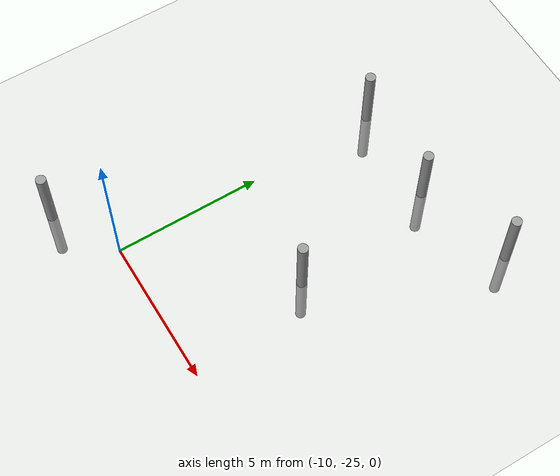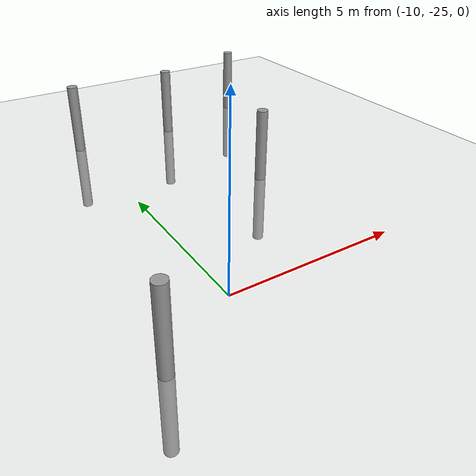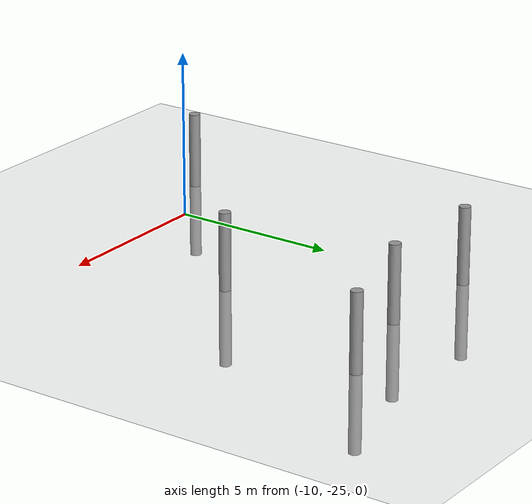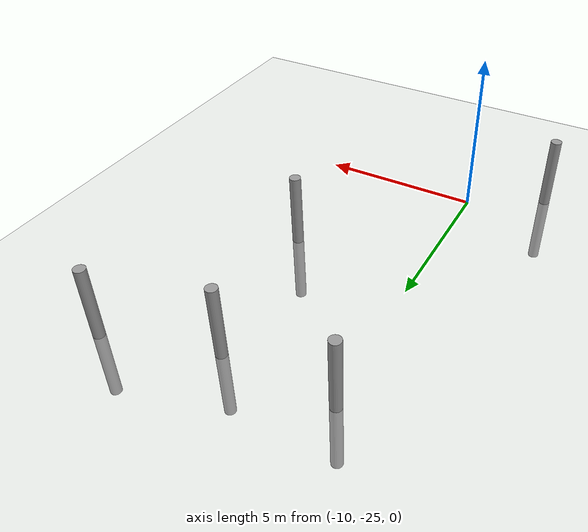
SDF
<sdf version="1.7">
 <world name="default">
  <model name="ground_plane">
   <static>1</static>
   <link name="link">
    <collision name="collision">
     <geometry><plane><normal>0 0 1</normal><size>100 100</size></plane></geometry>
     <surface>
      <contact><collide_bitmask>65535</collide_bitmask></contact>
      <friction><ode><mu>100</mu><mu2>50</mu2></ode></friction>
     </surface>
    </collision>
    <visual name="visual">
     <cast_shadows>0</cast_shadows>
     <geometry><plane><normal>0 0 1</normal><size>100 100</size></plane></geometry>
     <material>
      <script><uri>file://media/materials/scripts/gazebo.material</uri><name>Gazebo/Grey</name></script>
     </material>
    </visual>
   </link>
  </model>
  <model name="filar_0">
   <link name="link">
    <inertial>
     <mass>0.532177</mass>
     <inertia>
      <ixx>0.930096</ixx>
      <ixy>0</ixy>
      <ixz>0</ixz>
      <iyy>0.930096</iyy>
      <iyz>0</iyz>
      <izz>0.00774183</izz>
     </inertia>
    </inertial>
    <visual name="visual">
     <geometry><cylinder><radius>0.170572</radius><length>4.57005</length></cylinder></geometry>
     <material>
      <script><name>Gazebo/Grey</name><uri>file://media/materials/scripts/gazebo.material</uri></script>
      <shader type="pixel"/>
     </material>
    </visual>
    <collision name="collision">
     <geometry><cylinder><radius>0.170572</radius><length>4.57005</length></cylinder></geometry>
     <surface>
      <friction>
       <ode><mu>1</mu><mu2>1</mu2><fdir1>0 0 0</fdir1><slip1>0</slip1><slip2>0</slip2></ode>
       <torsional>
        <coefficient>1</coefficient>
        <patch_radius>0</patch_radius>
        <surface_radius>0</surface_radius>
        <use_patch_radius>1</use_patch_radius>
        <ode><slip>0</slip></ode>
       </torsional>
      </friction>
      <bounce><restitution_coefficient>0</restitution_coefficient><threshold>1e+06</threshold></bounce>
      <contact>
       <collide_without_contact>0</collide_without_contact>
       <collide_without_contact_bitmask>1</collide_without_contact_bitmask>
       <collide_bitmask>1</collide_bitmask>
       <ode>
        <soft_cfm>0</soft_cfm>
        <soft_erp>0.2</soft_erp>
        <kp>1e+13</kp>
        <kd>1</kd>
        <max_vel>0.01</max_vel>
        <min_depth>0</min_depth>
       </ode>
       <bullet>
        <split_impulse>1</split_impulse>
        <split_impulse_penetration_threshold>-0.01</split_impulse_penetration_threshold>
        <soft_cfm>0</soft_cfm>
        <soft_erp>0.2</soft_erp>
        <kp>1e+13</kp>
        <kd>1</kd>
       </bullet>
      </contact>
     </surface>
    </collision>
   </link>
   <static>0</static>
   <pose>-12.243 -26.276 0 0 -0 0</pose>
  </model>
  <model name="filar_2">
   <link name="link">
    <inertial>
     <mass>0.532177</mass>
     <inertia>
      <ixx>0.930096</ixx>
      <ixy>0</ixy>
      <ixz>0</ixz>
      <iyy>0.930096</iyy>
      <iyz>0</iyz>
      <izz>0.00774183</izz>
     </inertia>
    </inertial>
    <visual name="visual">
     <geometry><cylinder><radius>0.170572</radius><length>4.57005</length></cylinder></geometry>
     <material>
      <script><name>Gazebo/Grey</name><uri>file://media/materials/scripts/gazebo.material</uri></script>
      <shader type="pixel"/>
     </material>
    </visual>
    <collision name="collision">
     <geometry><cylinder><radius>0.170572</radius><length>4.57005</length></cylinder></geometry>
     <surface>
      <friction>
       <ode><mu>1</mu><mu2>1</mu2><fdir1>0 0 0</fdir1><slip1>0</slip1><slip2>0</slip2></ode>
       <torsional>
        <coefficient>1</coefficient>
        <patch_radius>0</patch_radius>
        <surface_radius>0</surface_radius>
        <use_patch_radius>1</use_patch_radius>
        <ode><slip>0</slip></ode>
       </torsional>
      </friction>
      <bounce><restitution_coefficient>0</restitution_coefficient><threshold>1e+06</threshold></bounce>
      <contact>
       <collide_without_contact>0</collide_without_contact>
       <collide_without_contact_bitmask>1</collide_without_contact_bitmask>
       <collide_bitmask>1</collide_bitmask>
       <ode>
        <soft_cfm>0</soft_cfm>
        <soft_erp>0.2</soft_erp>
        <kp>1e+13</kp>
        <kd>1</kd>
        <max_vel>0.01</max_vel>
        <min_depth>0</min_depth>
       </ode>
       <bullet>
        <split_impulse>1</split_impulse>
        <split_impulse_penetration_threshold>-0.01</split_impulse_penetration_threshold>
        <soft_cfm>0</soft_cfm>
        <soft_erp>0.2</soft_erp>
        <kp>1e+13</kp>
        <kd>1</kd>
       </bullet>
      </contact>
     </surface>
    </collision>
   </link>
   <static>0</static>
   <pose>-10.2111 -15.5124 0 0 -0 0</pose>
  </model>
  <model name="filar_3">
   <link name="link">
    <inertial>
     <mass>0.532177</mass>
     <inertia>
      <ixx>0.930096</ixx>
      <ixy>0</ixy>
      <ixz>0</ixz>
      <iyy>0.930096</iyy>
      <iyz>0</iyz>
      <izz>0.00774183</izz>
     </inertia>
    </inertial>
    <visual name="visual">
     <geometry><cylinder><radius>0.170572</radius><length>4.57005</length></cylinder></geometry>
     <material>
      <script><name>Gazebo/Grey</name><uri>file://media/materials/scripts/gazebo.material</uri></script>
      <shader type="pixel"/>
     </material>
    </visual>
    <collision name="collision">
     <geometry><cylinder><radius>0.170572</radius><length>4.57005</length></cylinder></geometry>
     <surface>
      <friction>
       <ode><mu>1</mu><mu2>1</mu2><fdir1>0 0 0</fdir1><slip1>0</slip1><slip2>0</slip2></ode>
       <torsional>
        <coefficient>1</coefficient>
        <patch_radius>0</patch_radius>
        <surface_radius>0</surface_radius>
        <use_patch_radius>1</use_patch_radius>
        <ode><slip>0</slip></ode>
       </torsional>
      </friction>
      <bounce><restitution_coefficient>0</restitution_coefficient><threshold>1e+06</threshold></bounce>
      <contact>
       <collide_without_contact>0</collide_without_contact>
       <collide_without_contact_bitmask>1</collide_without_contact_bitmask>
       <collide_bitmask>1</collide_bitmask>
       <ode>
        <soft_cfm>0</soft_cfm>
        <soft_erp>0.2</soft_erp>
        <kp>1e+13</kp>
        <kd>1</kd>
        <max_vel>0.01</max_vel>
        <min_depth>0</min_depth>
       </ode>
       <bullet>
        <split_impulse>1</split_impulse>
        <split_impulse_penetration_threshold>-0.01</split_impulse_penetration_threshold>
        <soft_cfm>0</soft_cfm>
        <soft_erp>0.2</soft_erp>
        <kp>1e+13</kp>
        <kd>1</kd>
       </bullet>
      </contact>
     </surface>
    </collision>
   </link>
   <static>0</static>
   <pose>-6.7867 -15.6078 0 0 -0 0</pose>
  </model>
  <model name="filar_4">
   <link name="link">
    <inertial>
     <mass>0.532177</mass>
     <inertia>
      <ixx>0.930096</ixx>
      <ixy>0</ixy>
      <ixz>0</ixz>
      <iyy>0.930096</iyy>
      <iyz>0</iyz>
      <izz>0.00774183</izz>
     </inertia>
    </inertial>
    <visual name="visual">
     <geometry><cylinder><radius>0.170572</radius><length>4.57005</length></cylinder></geometry>
     <material>
      <script><name>Gazebo/Grey</name><uri>file://media/materials/scripts/gazebo.material</uri></script>
      <shader type="pixel"/>
     </material>
    </visual>
    <collision name="collision">
     <geometry><cylinder><radius>0.170572</radius><length>4.57005</length></cylinder></geometry>
     <surface>
      <friction>
       <ode><mu>1</mu><mu2>1</mu2><fdir1>0 0 0</fdir1><slip1>0</slip1><slip2>0</slip2></ode>
       <torsional>
        <coefficient>1</coefficient>
        <patch_radius>0</patch_radius>
        <surface_radius>0</surface_radius>
        <use_patch_radius>1</use_patch_radius>
        <ode><slip>0</slip></ode>
       </torsional>
      </friction>
      <bounce><restitution_coefficient>0</restitution_coefficient><threshold>1e+06</threshold></bounce>
      <contact>
       <collide_without_contact>0</collide_without_contact>
       <collide_without_contact_bitmask>1</collide_without_contact_bitmask>
       <collide_bitmask>1</collide_bitmask>
       <ode>
        <soft_cfm>0</soft_cfm>
        <soft_erp>0.2</soft_erp>
        <kp>1e+13</kp>
        <kd>1</kd>
        <max_vel>0.01</max_vel>
        <min_depth>0</min_depth>
       </ode>
       <bullet>
        <split_impulse>1</split_impulse>
        <split_impulse_penetration_threshold>-0.01</split_impulse_penetration_threshold>
        <soft_cfm>0</soft_cfm>
        <soft_erp>0.2</soft_erp>
        <kp>1e+13</kp>
        <kd>1</kd>
       </bullet>
      </contact>
     </surface>
    </collision>
   </link>
   <static>0</static>
   <pose>-3.49321 -14.6513 0 0 -0 0</pose>
  </model>
  <model name="filar_5">
   <link name="link">
    <inertial>
     <mass>0.532177</mass>
     <inertia>
      <ixx>0.930096</ixx>
      <ixy>0</ixy>
      <ixz>0</ixz>
      <iyy>0.930096</iyy>
      <iyz>0</iyz>
      <izz>0.00774183</izz>
     </inertia>
    </inertial>
    <visual name="visual">
     <geometry><cylinder><radius>0.170572</radius><length>4.57005</length></cylinder></geometry>
     <material>
      <script><name>Gazebo/Grey</name><uri>file://media/materials/scripts/gazebo.material</uri></script>
      <shader type="pixel"/>
     </material>
    </visual>
    <collision name="collision">
     <geometry><cylinder><radius>0.170572</radius><length>4.57005</length></cylinder></geometry>
     <surface>
      <friction>
       <ode><mu>1</mu><mu2>1</mu2><fdir1>0 0 0</fdir1><slip1>0</slip1><slip2>0</slip2></ode>
       <torsional>
        <coefficient>1</coefficient>
        <patch_radius>0</patch_radius>
        <surface_radius>0</surface_radius>
        <use_patch_radius>1</use_patch_radius>
        <ode><slip>0</slip></ode>
       </torsional>
      </friction>
      <bounce><restitution_coefficient>0</restitution_coefficient><threshold>1e+06</threshold></bounce>
      <contact>
       <collide_without_contact>0</collide_without_contact>
       <collide_without_contact_bitmask>1</collide_without_contact_bitmask>
       <collide_bitmask>1</collide_bitmask>
       <ode>
        <soft_cfm>0</soft_cfm>
        <soft_erp>0.2</soft_erp>
        <kp>1e+13</kp>
        <kd>1</kd>
        <max_vel>0.01</max_vel>
        <min_depth>0</min_depth>
       </ode>
       <bullet>
        <split_impulse>1</split_impulse>
        <split_impulse_penetration_threshold>-0.01</split_impulse_penetration_threshold>
        <soft_cfm>0</soft_cfm>
        <soft_erp>0.2</soft_erp>
        <kp>1e+13</kp>
        <kd>1</kd>
       </bullet>
      </contact>
     </surface>
    </collision>
   </link>
   <static>0</static>
   <pose>-6.04874 -20.6463 0 0 -0 0</pose>
  </model>
 </world>
</sdf>
